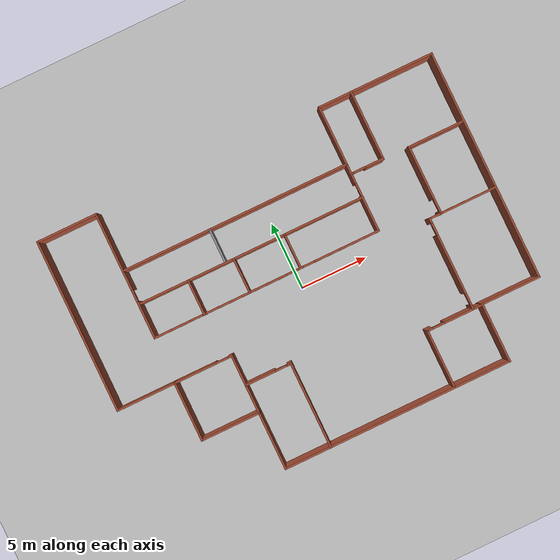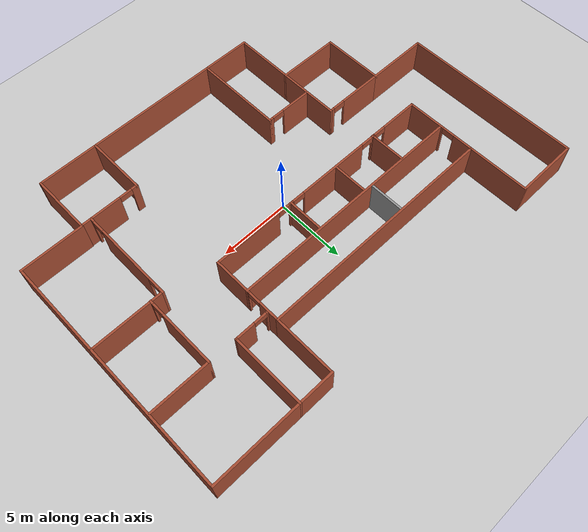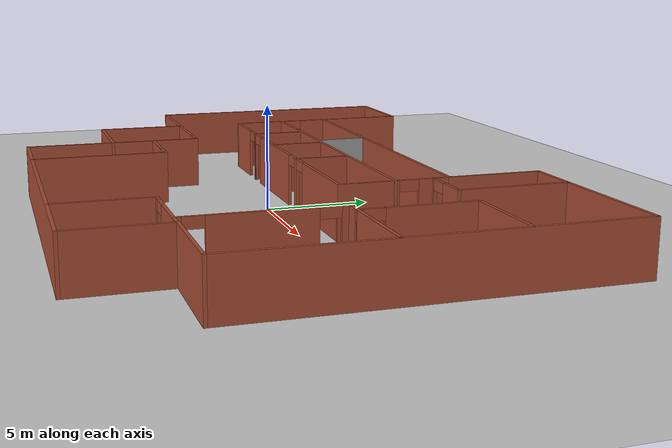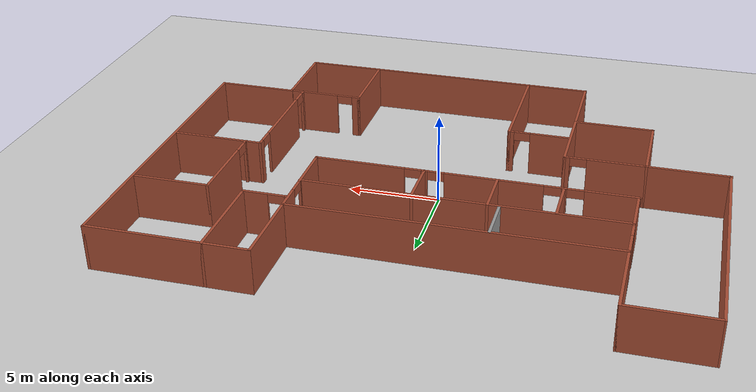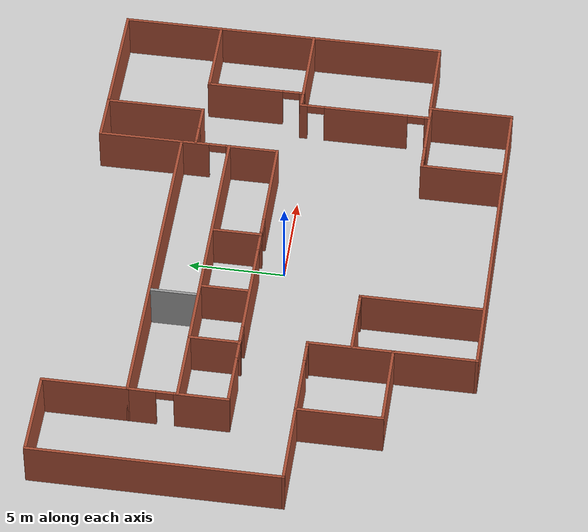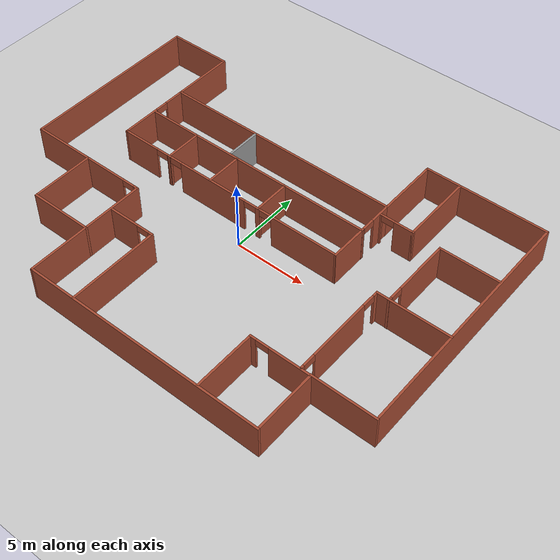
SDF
<sdf version="1.6">
 <world name="default">
  <model name="ground_plane">
   <static>1</static>
   <link name="link">
    <collision name="collision">
     <geometry><plane><normal>0 0 1</normal><size>100 100</size></plane></geometry>
     <surface>
      <contact><collide_bitmask>65535</collide_bitmask></contact>
      <friction><ode><mu>100</mu><mu2>50</mu2></ode></friction>
     </surface>
    </collision>
    <visual name="visual">
     <cast_shadows>0</cast_shadows>
     <geometry><plane><normal>0 0 1</normal><size>100 100</size></plane></geometry>
     <material>
      <script><uri>file://media/materials/scripts/gazebo.material</uri><name>Gazebo/Grey</name></script>
     </material>
    </visual>
   </link>
  </model>
  <model name="mybuilding">
   <pose>-0.044618 0.031992 0 0 -0 0</pose>
   <link name="Wall_0">
    <collision name="Wall_0_Collision">
     <geometry><box><size>4.5 0.15 2.5</size></box></geometry>
     <pose>0 0 1.25 0 -0 0</pose>
    </collision>
    <visual name="Wall_0_Visual">
     <pose>0 0 1.25 0 -0 0</pose>
     <geometry><box><size>4.5 0.15 2.5</size></box></geometry>
     <material>
      <script><uri>file://media/materials/scripts/gazebo.material</uri><name>Gazebo/Bricks</name></script>
      <ambient>1 1 1 1</ambient>
     </material>
     <meta><layer>0</layer></meta>
    </visual>
    <pose>-12.8 10.725 0 0 -0 0</pose>
   </link>
   <link name="Wall_1">
    <collision name="Wall_1_Collision">
     <geometry><box><size>4.5 0.15 2.5</size></box></geometry>
     <pose>0 0 1.25 0 -0 0</pose>
    </collision>
    <visual name="Wall_1_Visual">
     <pose>0 0 1.25 0 -0 0</pose>
     <geometry><box><size>4.5 0.15 2.5</size></box></geometry>
     <material>
      <script><uri>file://media/materials/scripts/gazebo.material</uri><name>Gazebo/Bricks</name></script>
      <ambient>1 1 1 1</ambient>
     </material>
     <meta><layer>0</layer></meta>
    </visual>
    <pose>-10.625 8.55 0 0 0 -1.5708</pose>
   </link>
   <link name="Wall_16">
    <collision name="Wall_16_Collision">
     <geometry><box><size>13 0.15 2.5</size></box></geometry>
     <pose>0 0 1.25 0 -0 0</pose>
    </collision>
    <visual name="Wall_16_Visual">
     <pose>0 0 1.25 0 -0 0</pose>
     <geometry><box><size>13 0.15 2.5</size></box></geometry>
     <material>
      <script><uri>file://media/materials/scripts/gazebo.material</uri><name>Gazebo/Bricks</name></script>
      <ambient>1 1 1 1</ambient>
     </material>
     <meta><layer>0</layer></meta>
    </visual>
    <pose>-15.075 4.3 0 0 -0 1.5708</pose>
   </link>
   <link name="Wall_2">
    <collision name="Wall_2_Collision">
     <geometry><box><size>17.25 0.15 2.5</size></box></geometry>
     <pose>0 0 1.25 0 -0 0</pose>
    </collision>
    <visual name="Wall_2_Visual">
     <pose>0 0 1.25 0 -0 0</pose>
     <geometry><box><size>17.25 0.15 2.5</size></box></geometry>
     <material>
      <script><uri>file://media/materials/scripts/gazebo.material</uri><name>Gazebo/Bricks</name></script>
      <ambient>1 1 1 1</ambient>
     </material>
     <meta><layer>0</layer></meta>
    </visual>
    <pose>-2.075 6.375 0 0 -0 0</pose>
   </link>
   <link name="Wall_20">
    <collision name="Wall_20_Collision">
     <geometry><box><size>4.5 0.15 2.5</size></box></geometry>
     <pose>0 0 1.25 0 -0 0</pose>
    </collision>
    <visual name="Wall_20_Visual">
     <pose>0 0 1.25 0 -0 0</pose>
     <geometry><box><size>4.5 0.15 2.5</size></box></geometry>
     <material>
      <script><uri>file://media/materials/scripts/gazebo.material</uri><name>Gazebo/Bricks</name></script>
      <ambient>1 1 1 1</ambient>
     </material>
     <meta><layer>0</layer></meta>
    </visual>
    <pose>-12.9 -2.125 0 0 -0 0</pose>
   </link>
   <link name="Wall_21">
    <collision name="Wall_21_Collision">
     <geometry><box><size>4.5 0.15 2.5</size></box></geometry>
     <pose>0 0 1.25 0 -0 0</pose>
    </collision>
    <visual name="Wall_21_Visual">
     <pose>0 0 1.25 0 -0 0</pose>
     <geometry><box><size>4.5 0.15 2.5</size></box></geometry>
     <material>
      <script><uri>file://media/materials/scripts/gazebo.material</uri><name>Gazebo/Bricks</name></script>
      <ambient>1 1 1 1</ambient>
     </material>
     <meta><layer>0</layer></meta>
    </visual>
    <pose>-10.725 -4.3 0 0 0 -1.5708</pose>
   </link>
   <link name="Wall_22">
    <collision name="Wall_22_Collision">
     <geometry><box><size>4.5 0.15 2.5</size></box></geometry>
     <pose>0 0 1.25 0 -0 0</pose>
    </collision>
    <visual name="Wall_22_Visual">
     <pose>0 0 1.25 0 -0 0</pose>
     <geometry><box><size>4.5 0.15 2.5</size></box></geometry>
     <material>
      <script><uri>file://media/materials/scripts/gazebo.material</uri><name>Gazebo/Bricks</name></script>
      <ambient>1 1 1 1</ambient>
     </material>
     <meta><layer>0</layer></meta>
    </visual>
    <pose>-8.55 -6.475 0 0 -0 0</pose>
   </link>
   <link name="Wall_24">
    <pose>-10.625 3.825 0 0 0 -1.5708</pose>
    <visual name="Wall_24_Visual_0">
     <pose>-1.86673 0 1.25 0 -0 0</pose>
     <geometry><box><size>1.51653 0.15 2.5</size></box></geometry>
     <material>
      <script><uri>file://media/materials/scripts/gazebo.material</uri><name>Gazebo/Bricks</name></script>
      <ambient>1 1 1 1</ambient>
     </material>
     <meta><layer>0</layer></meta>
    </visual>
    <collision name="Wall_24_Collision_0">
     <geometry><box><size>1.51653 0.15 2.5</size></box></geometry>
     <pose>-1.86673 0 1.25 0 -0 0</pose>
    </collision>
    <visual name="Wall_24_Visual_1">
     <pose>1.20827 0 1.25 0 -0 0</pose>
     <geometry><box><size>2.83347 0.15 2.5</size></box></geometry>
     <material>
      <script><uri>file://media/materials/scripts/gazebo.material</uri><name>Gazebo/Bricks</name></script>
      <ambient>1 1 1 1</ambient>
     </material>
     <meta><layer>0</layer></meta>
    </visual>
    <collision name="Wall_24_Collision_1">
     <geometry><box><size>2.83347 0.15 2.5</size></box></geometry>
     <pose>1.20827 0 1.25 0 -0 0</pose>
    </collision>
    <visual name="Wall_24_Visual_2">
     <pose>-0.658467 0 2.25 0 -0 0</pose>
     <geometry><box><size>0.9 0.15 0.5</size></box></geometry>
     <material>
      <script><uri>file://media/materials/scripts/gazebo.material</uri><name>Gazebo/Bricks</name></script>
      <ambient>1 1 1 1</ambient>
     </material>
     <meta><layer>0</layer></meta>
    </visual>
    <collision name="Wall_24_Collision_2">
     <geometry><box><size>0.9 0.15 0.5</size></box></geometry>
     <pose>-0.658467 0 2.25 0 -0 0</pose>
    </collision>
   </link>
   <link name="Wall_25">
    <pose>-2.075 1.275 0 0 -0 0</pose>
    <visual name="Wall_25_Visual_0">
     <pose>-7.22106 0 1.25 0 -0 0</pose>
     <geometry><box><size>2.80789 0.15 2.5</size></box></geometry>
     <material>
      <script><uri>file://media/materials/scripts/gazebo.material</uri><name>Gazebo/Bricks</name></script>
      <ambient>1 1 1 1</ambient>
     </material>
     <meta><layer>0</layer></meta>
    </visual>
    <collision name="Wall_25_Collision_0">
     <geometry><box><size>2.80789 0.15 2.5</size></box></geometry>
     <pose>-7.22106 0 1.25 0 -0 0</pose>
    </collision>
    <visual name="Wall_25_Visual_1">
     <pose>-4.77525 0 1.25 0 -0 0</pose>
     <geometry><box><size>0.283739 0.15 2.5</size></box></geometry>
     <material>
      <script><uri>file://media/materials/scripts/gazebo.material</uri><name>Gazebo/Bricks</name></script>
      <ambient>1 1 1 1</ambient>
     </material>
     <meta><layer>0</layer></meta>
    </visual>
    <collision name="Wall_25_Collision_1">
     <geometry><box><size>0.283739 0.15 2.5</size></box></geometry>
     <pose>-4.77525 0 1.25 0 -0 0</pose>
    </collision>
    <visual name="Wall_25_Visual_2">
     <pose>-1.10296 0 1.25 0 -0 0</pose>
     <geometry><box><size>5.26082 0.15 2.5</size></box></geometry>
     <material>
      <script><uri>file://media/materials/scripts/gazebo.material</uri><name>Gazebo/Bricks</name></script>
      <ambient>1 1 1 1</ambient>
     </material>
     <meta><layer>0</layer></meta>
    </visual>
    <collision name="Wall_25_Collision_2">
     <geometry><box><size>5.26082 0.15 2.5</size></box></geometry>
     <pose>-1.10296 0 1.25 0 -0 0</pose>
    </collision>
    <visual name="Wall_25_Visual_3">
     <pose>2.59622 0 1.25 0 -0 0</pose>
     <geometry><box><size>0.337545 0.15 2.5</size></box></geometry>
     <material>
      <script><uri>file://media/materials/scripts/gazebo.material</uri><name>Gazebo/Bricks</name></script>
      <ambient>1 1 1 1</ambient>
     </material>
     <meta><layer>0</layer></meta>
    </visual>
    <collision name="Wall_25_Collision_3">
     <geometry><box><size>0.337545 0.15 2.5</size></box></geometry>
     <pose>2.59622 0 1.25 0 -0 0</pose>
    </collision>
    <visual name="Wall_25_Visual_4">
     <pose>6.145 0 1.25 0 -0 0</pose>
     <geometry><box><size>4.96001 0.15 2.5</size></box></geometry>
     <material>
      <script><uri>file://media/materials/scripts/gazebo.material</uri><name>Gazebo/Bricks</name></script>
      <ambient>1 1 1 1</ambient>
     </material>
     <meta><layer>0</layer></meta>
    </visual>
    <collision name="Wall_25_Collision_4">
     <geometry><box><size>4.96001 0.15 2.5</size></box></geometry>
     <pose>6.145 0 1.25 0 -0 0</pose>
    </collision>
    <visual name="Wall_25_Visual_5">
     <pose>-5.36712 0 2.25 0 -0 0</pose>
     <geometry><box><size>0.9 0.15 0.5</size></box></geometry>
     <material>
      <script><uri>file://media/materials/scripts/gazebo.material</uri><name>Gazebo/Bricks</name></script>
      <ambient>1 1 1 1</ambient>
     </material>
     <meta><layer>0</layer></meta>
    </visual>
    <collision name="Wall_25_Collision_5">
     <geometry><box><size>0.9 0.15 0.5</size></box></geometry>
     <pose>-5.36712 0 2.25 0 -0 0</pose>
    </collision>
    <visual name="Wall_25_Visual_6">
     <pose>-4.18338 0 2.25 0 -0 0</pose>
     <geometry><box><size>0.9 0.15 0.5</size></box></geometry>
     <material>
      <script><uri>file://media/materials/scripts/gazebo.material</uri><name>Gazebo/Bricks</name></script>
      <ambient>1 1 1 1</ambient>
     </material>
     <meta><layer>0</layer></meta>
    </visual>
    <collision name="Wall_25_Collision_6">
     <geometry><box><size>0.9 0.15 0.5</size></box></geometry>
     <pose>-4.18338 0 2.25 0 -0 0</pose>
    </collision>
    <visual name="Wall_25_Visual_7">
     <pose>1.97745 0 2.25 0 -0 0</pose>
     <geometry><box><size>0.9 0.15 0.5</size></box></geometry>
     <material>
      <script><uri>file://media/materials/scripts/gazebo.material</uri><name>Gazebo/Bricks</name></script>
      <ambient>1 1 1 1</ambient>
     </material>
     <meta><layer>0</layer></meta>
    </visual>
    <collision name="Wall_25_Collision_7">
     <geometry><box><size>0.9 0.15 0.5</size></box></geometry>
     <pose>1.97745 0 2.25 0 -0 0</pose>
    </collision>
    <visual name="Wall_25_Visual_8">
     <pose>3.21499 0 2.25 0 -0 0</pose>
     <geometry><box><size>0.9 0.15 0.5</size></box></geometry>
     <material>
      <script><uri>file://media/materials/scripts/gazebo.material</uri><name>Gazebo/Bricks</name></script>
      <ambient>1 1 1 1</ambient>
     </material>
     <meta><layer>0</layer></meta>
    </visual>
    <collision name="Wall_25_Collision_8">
     <geometry><box><size>0.9 0.15 0.5</size></box></geometry>
     <pose>3.21499 0 2.25 0 -0 0</pose>
    </collision>
   </link>
   <link name="Wall_26">
    <pose>6.475 3.825 0 0 -0 1.5708</pose>
    <visual name="Wall_26_Visual_0">
     <pose>-1.22172 0 1.25 0 -0 0</pose>
     <geometry><box><size>2.80656 0.15 2.5</size></box></geometry>
     <material>
      <script><uri>file://media/materials/scripts/gazebo.material</uri><name>Gazebo/Bricks</name></script>
      <ambient>1 1 1 1</ambient>
     </material>
     <meta><layer>0</layer></meta>
    </visual>
    <collision name="Wall_26_Collision_0">
     <geometry><box><size>2.80656 0.15 2.5</size></box></geometry>
     <pose>-1.22172 0 1.25 0 -0 0</pose>
    </collision>
    <visual name="Wall_26_Visual_1">
     <pose>1.85328 0 1.25 0 -0 0</pose>
     <geometry><box><size>1.54344 0.15 2.5</size></box></geometry>
     <material>
      <script><uri>file://media/materials/scripts/gazebo.material</uri><name>Gazebo/Bricks</name></script>
      <ambient>1 1 1 1</ambient>
     </material>
     <meta><layer>0</layer></meta>
    </visual>
    <collision name="Wall_26_Collision_1">
     <geometry><box><size>1.54344 0.15 2.5</size></box></geometry>
     <pose>1.85328 0 1.25 0 -0 0</pose>
    </collision>
    <visual name="Wall_26_Visual_2">
     <pose>0.631564 0 2.25 0 -0 0</pose>
     <geometry><box><size>0.9 0.15 0.5</size></box></geometry>
     <material>
      <script><uri>file://media/materials/scripts/gazebo.material</uri><name>Gazebo/Bricks</name></script>
      <ambient>1 1 1 1</ambient>
     </material>
     <meta><layer>0</layer></meta>
    </visual>
    <collision name="Wall_26_Collision_2">
     <geometry><box><size>0.9 0.15 0.5</size></box></geometry>
     <pose>0.631564 0 2.25 0 -0 0</pose>
    </collision>
   </link>
   <link name="Wall_28">
    <collision name="Wall_28_Collision">
     <geometry><box><size>17.25 0.15 2.5</size></box></geometry>
     <pose>0 0 1.25 0 -0 0</pose>
    </collision>
    <visual name="Wall_28_Visual">
     <pose>0 0 1.25 0 -0 0</pose>
     <geometry><box><size>17.25 0.15 2.5</size></box></geometry>
     <material>
      <script><uri>file://media/materials/scripts/gazebo.material</uri><name>Gazebo/Bricks</name></script>
      <ambient>1 1 1 1</ambient>
     </material>
     <meta><layer>0</layer></meta>
    </visual>
    <pose>-2.06669 3.83779 0 0 -0 0</pose>
   </link>
   <link name="Wall_3">
    <collision name="Wall_3_Collision">
     <geometry><box><size>4.5 0.15 2.5</size></box></geometry>
     <pose>0 0 1.25 0 -0 0</pose>
    </collision>
    <visual name="Wall_3_Visual">
     <pose>0 0 1.25 0 -0 0</pose>
     <geometry><box><size>4.5 0.15 2.5</size></box></geometry>
     <material>
      <script><uri>file://media/materials/scripts/gazebo.material</uri><name>Gazebo/Bricks</name></script>
      <ambient>1 1 1 1</ambient>
     </material>
     <meta><layer>0</layer></meta>
    </visual>
    <pose>6.475 8.55 0 0 -0 1.5708</pose>
   </link>
   <link name="Wall_30">
    <collision name="Wall_30_Collision">
     <geometry><box><size>2.5 0.15 2.5</size></box></geometry>
     <pose>0 0 1.25 0 -0 0</pose>
    </collision>
    <visual name="Wall_30_Visual">
     <pose>0 0 1.25 0 -0 0</pose>
     <geometry><box><size>2.5 0.15 2.5</size></box></geometry>
     <material>
      <script><uri>file://media/materials/scripts/gazebo.material</uri><name>Gazebo/Grey</name></script>
      <ambient>1 1 1 1</ambient>
     </material>
     <meta><layer>0</layer></meta>
    </visual>
    <pose>-3.99851 5.16479 0 0 0 -1.5708</pose>
   </link>
   <link name="Wall_33">
    <collision name="Wall_33_Collision">
     <geometry><box><size>2.7 0.15 2.5</size></box></geometry>
     <pose>0 0 1.25 0 -0 0</pose>
    </collision>
    <visual name="Wall_33_Visual">
     <pose>0 0 1.25 0 -0 0</pose>
     <geometry><box><size>2.7 0.15 2.5</size></box></geometry>
     <material>
      <script><uri>file://media/materials/scripts/gazebo.material</uri><name>Gazebo/Bricks</name></script>
      <ambient>1 1 1 1</ambient>
     </material>
     <meta><layer>0</layer></meta>
    </visual>
    <pose>-6.85025 2.53589 0 0 0 -1.5708</pose>
   </link>
   <link name="Wall_35">
    <collision name="Wall_35_Collision">
     <geometry><box><size>2.7 0.15 2.5</size></box></geometry>
     <pose>0 0 1.25 0 -0 0</pose>
    </collision>
    <visual name="Wall_35_Visual">
     <pose>0 0 1.25 0 -0 0</pose>
     <geometry><box><size>2.7 0.15 2.5</size></box></geometry>
     <material>
      <script><uri>file://media/materials/scripts/gazebo.material</uri><name>Gazebo/Bricks</name></script>
      <ambient>1 1 1 1</ambient>
     </material>
     <meta><layer>0</layer></meta>
    </visual>
    <pose>-3.37974 2.56279 0 0 0 -1.5708</pose>
   </link>
   <link name="Wall_37">
    <collision name="Wall_37_Collision">
     <geometry><box><size>2.7 0.15 2.5</size></box></geometry>
     <pose>0 0 1.25 0 -0 0</pose>
    </collision>
    <visual name="Wall_37_Visual">
     <pose>0 0 1.25 0 -0 0</pose>
     <geometry><box><size>2.7 0.15 2.5</size></box></geometry>
     <material>
      <script><uri>file://media/materials/scripts/gazebo.material</uri><name>Gazebo/Bricks</name></script>
      <ambient>1 1 1 1</ambient>
     </material>
     <meta><layer>0</layer></meta>
    </visual>
    <pose>0.52122 2.56279 0 0 0 -1.5708</pose>
   </link>
   <link name="Wall_39">
    <collision name="Wall_39_Collision">
     <geometry><box><size>5.25 0.15 2.5</size></box></geometry>
     <pose>0 0 1.25 0 -0 0</pose>
    </collision>
    <visual name="Wall_39_Visual">
     <pose>0 0 1.25 0 -0 0</pose>
     <geometry><box><size>5.25 0.15 2.5</size></box></geometry>
     <material>
      <script><uri>file://media/materials/scripts/gazebo.material</uri><name>Gazebo/Bricks</name></script>
      <ambient>1 1 1 1</ambient>
     </material>
     <meta><layer>0</layer></meta>
    </visual>
    <pose>8.91501 8.175 0 0 0 -1.5708</pose>
   </link>
   <link name="Wall_4">
    <collision name="Wall_4_Collision">
     <geometry><box><size>8.75 0.15 2.5</size></box></geometry>
     <pose>0 0 1.25 0 -0 0</pose>
    </collision>
    <visual name="Wall_4_Visual">
     <pose>0 0 1.25 0 -0 0</pose>
     <geometry><box><size>8.75 0.15 2.5</size></box></geometry>
     <material>
      <script><uri>file://media/materials/scripts/gazebo.material</uri><name>Gazebo/Bricks</name></script>
      <ambient>1 1 1 1</ambient>
     </material>
     <meta><layer>0</layer></meta>
    </visual>
    <pose>10.775 10.725 0 0 -0 0</pose>
   </link>
   <link name="Wall_40">
    <pose>7.74001 5.625 0 0 -0 3.14159</pose>
    <visual name="Wall_40_Visual_0">
     <pose>-0.536244 0 1.25 0 -0 0</pose>
     <geometry><box><size>1.42751 0.15 2.5</size></box></geometry>
     <material>
      <script><uri>file://media/materials/scripts/gazebo.material</uri><name>Gazebo/Bricks</name></script>
      <ambient>1 1 1 1</ambient>
     </material>
     <meta><layer>0</layer></meta>
    </visual>
    <collision name="Wall_40_Collision_0">
     <geometry><box><size>1.42751 0.15 2.5</size></box></geometry>
     <pose>-0.536244 0 1.25 0 -0 0</pose>
    </collision>
    <visual name="Wall_40_Visual_1">
     <pose>1.16376 0 1.25 0 -0 0</pose>
     <geometry><box><size>0.172488 0.15 2.5</size></box></geometry>
     <material>
      <script><uri>file://media/materials/scripts/gazebo.material</uri><name>Gazebo/Bricks</name></script>
      <ambient>1 1 1 1</ambient>
     </material>
     <meta><layer>0</layer></meta>
    </visual>
    <collision name="Wall_40_Collision_1">
     <geometry><box><size>0.172488 0.15 2.5</size></box></geometry>
     <pose>1.16376 0 1.25 0 -0 0</pose>
    </collision>
    <visual name="Wall_40_Visual_2">
     <pose>0.627512 0 2.25 0 -0 0</pose>
     <geometry><box><size>0.9 0.15 0.5</size></box></geometry>
     <material>
      <script><uri>file://media/materials/scripts/gazebo.material</uri><name>Gazebo/Bricks</name></script>
      <ambient>1 1 1 1</ambient>
     </material>
     <meta><layer>0</layer></meta>
    </visual>
    <collision name="Wall_40_Collision_2">
     <geometry><box><size>0.9 0.15 0.5</size></box></geometry>
     <pose>0.627512 0 2.25 0 -0 0</pose>
    </collision>
   </link>
   <link name="Wall_42">
    <pose>-8.55 -2.125 0 0 -0 0</pose>
    <visual name="Wall_42_Visual_0">
     <pose>-0.634639 0 1.25 0 -0 0</pose>
     <geometry><box><size>3.23072 0.15 2.5</size></box></geometry>
     <material>
      <script><uri>file://media/materials/scripts/gazebo.material</uri><name>Gazebo/Bricks</name></script>
      <ambient>1 1 1 1</ambient>
     </material>
     <meta><layer>0</layer></meta>
    </visual>
    <collision name="Wall_42_Collision_0">
     <geometry><box><size>3.23072 0.15 2.5</size></box></geometry>
     <pose>-0.634639 0 1.25 0 -0 0</pose>
    </collision>
    <visual name="Wall_42_Visual_1">
     <pose>2.06536 0 1.25 0 -0 0</pose>
     <geometry><box><size>0.369277 0.15 2.5</size></box></geometry>
     <material>
      <script><uri>file://media/materials/scripts/gazebo.material</uri><name>Gazebo/Bricks</name></script>
      <ambient>1 1 1 1</ambient>
     </material>
     <meta><layer>0</layer></meta>
    </visual>
    <collision name="Wall_42_Collision_1">
     <geometry><box><size>0.369277 0.15 2.5</size></box></geometry>
     <pose>2.06536 0 1.25 0 -0 0</pose>
    </collision>
    <visual name="Wall_42_Visual_2">
     <pose>1.43072 0 2.25 0 -0 0</pose>
     <geometry><box><size>0.9 0.15 0.5</size></box></geometry>
     <material>
      <script><uri>file://media/materials/scripts/gazebo.material</uri><name>Gazebo/Bricks</name></script>
      <ambient>1 1 1 1</ambient>
     </material>
     <meta><layer>0</layer></meta>
    </visual>
    <collision name="Wall_42_Collision_2">
     <geometry><box><size>0.9 0.15 0.5</size></box></geometry>
     <pose>1.43072 0 2.25 0 -0 0</pose>
    </collision>
   </link>
   <link name="Wall_43">
    <collision name="Wall_43_Collision">
     <geometry><box><size>4.5 0.15 2.5</size></box></geometry>
     <pose>0 0 1.25 0 -0 0</pose>
    </collision>
    <visual name="Wall_43_Visual">
     <pose>0 0 1.25 0 -0 0</pose>
     <geometry><box><size>4.5 0.15 2.5</size></box></geometry>
     <material>
      <script><uri>file://media/materials/scripts/gazebo.material</uri><name>Gazebo/Bricks</name></script>
      <ambient>1 1 1 1</ambient>
     </material>
     <meta><layer>0</layer></meta>
    </visual>
    <pose>-6.375 -4.3 0 0 0 -1.5708</pose>
   </link>
   <link name="Wall_45">
    <pose>-4.61028 -4.36767 0 0 -0 0</pose>
    <visual name="Wall_45_Visual_0">
     <pose>-0.632697 0 1.25 0 -0 0</pose>
     <geometry><box><size>2.23461 0.15 2.5</size></box></geometry>
     <material>
      <script><uri>file://media/materials/scripts/gazebo.material</uri><name>Gazebo/Bricks</name></script>
      <ambient>1 1 1 1</ambient>
     </material>
     <meta><layer>0</layer></meta>
    </visual>
    <collision name="Wall_45_Collision_0">
     <geometry><box><size>2.23461 0.15 2.5</size></box></geometry>
     <pose>-0.632697 0 1.25 0 -0 0</pose>
    </collision>
    <visual name="Wall_45_Visual_1">
     <pose>1.5673 0 1.25 0 -0 0</pose>
     <geometry><box><size>0.365393 0.15 2.5</size></box></geometry>
     <material>
      <script><uri>file://media/materials/scripts/gazebo.material</uri><name>Gazebo/Bricks</name></script>
      <ambient>1 1 1 1</ambient>
     </material>
     <meta><layer>0</layer></meta>
    </visual>
    <collision name="Wall_45_Collision_1">
     <geometry><box><size>0.365393 0.15 2.5</size></box></geometry>
     <pose>1.5673 0 1.25 0 -0 0</pose>
    </collision>
    <visual name="Wall_45_Visual_2">
     <pose>0.934607 0 2.25 0 -0 0</pose>
     <geometry><box><size>0.9 0.15 0.5</size></box></geometry>
     <material>
      <script><uri>file://media/materials/scripts/gazebo.material</uri><name>Gazebo/Bricks</name></script>
      <ambient>1 1 1 1</ambient>
     </material>
     <meta><layer>0</layer></meta>
    </visual>
    <collision name="Wall_45_Collision_2">
     <geometry><box><size>0.9 0.15 0.5</size></box></geometry>
     <pose>0.934607 0 2.25 0 -0 0</pose>
    </collision>
   </link>
   <link name="Wall_46">
    <collision name="Wall_46_Collision">
     <geometry><box><size>6.5 0.15 2.5</size></box></geometry>
     <pose>0 0 1.25 0 -0 0</pose>
    </collision>
    <visual name="Wall_46_Visual">
     <pose>0 0 1.25 0 -0 0</pose>
     <geometry><box><size>6.5 0.15 2.5</size></box></geometry>
     <material>
      <script><uri>file://media/materials/scripts/gazebo.material</uri><name>Gazebo/Bricks</name></script>
      <ambient>1 1 1 1</ambient>
     </material>
     <meta><layer>0</layer></meta>
    </visual>
    <pose>-2.93528 -7.54267 0 0 0 -1.5708</pose>
   </link>
   <link name="Wall_48">
    <collision name="Wall_48_Collision">
     <geometry><box><size>4.4 0.15 2.5</size></box></geometry>
     <pose>0 0 1.25 0 -0 0</pose>
    </collision>
    <visual name="Wall_48_Visual">
     <pose>0 0 1.25 0 -0 0</pose>
     <geometry><box><size>4.4 0.15 2.5</size></box></geometry>
     <material>
      <script><uri>file://media/materials/scripts/gazebo.material</uri><name>Gazebo/Bricks</name></script>
      <ambient>1 1 1 1</ambient>
     </material>
     <meta><layer>0</layer></meta>
    </visual>
    <pose>6.52062 -8.53801 0 0 -0 1.5708</pose>
   </link>
   <link name="Wall_5">
    <collision name="Wall_5_Collision">
     <geometry><box><size>17.25 0.15 2.5</size></box></geometry>
     <pose>0 0 1.25 0 -0 0</pose>
    </collision>
    <visual name="Wall_5_Visual">
     <pose>0 0 1.25 0 -0 0</pose>
     <geometry><box><size>17.25 0.15 2.5</size></box></geometry>
     <material>
      <script><uri>file://media/materials/scripts/gazebo.material</uri><name>Gazebo/Bricks</name></script>
      <ambient>1 1 1 1</ambient>
     </material>
     <meta><layer>0</layer></meta>
    </visual>
    <pose>15.075 2.175 0 0 0 -1.5708</pose>
   </link>
   <link name="Wall_53">
    <pose>8.57062 -6.41301 0 0 -0 0</pose>
    <visual name="Wall_53_Visual_0">
     <pose>-1.88205 0 1.25 0 -0 0</pose>
     <geometry><box><size>0.485901 0.15 2.5</size></box></geometry>
     <material>
      <script><uri>file://media/materials/scripts/gazebo.material</uri><name>Gazebo/Bricks</name></script>
      <ambient>1 1 1 1</ambient>
     </material>
     <meta><layer>0</layer></meta>
    </visual>
    <collision name="Wall_53_Collision_0">
     <geometry><box><size>0.485901 0.15 2.5</size></box></geometry>
     <pose>-1.88205 0 1.25 0 -0 0</pose>
    </collision>
    <visual name="Wall_53_Visual_1">
     <pose>0.692951 0 1.25 0 -0 0</pose>
     <geometry><box><size>2.8641 0.15 2.5</size></box></geometry>
     <material>
      <script><uri>file://media/materials/scripts/gazebo.material</uri><name>Gazebo/Bricks</name></script>
      <ambient>1 1 1 1</ambient>
     </material>
     <meta><layer>0</layer></meta>
    </visual>
    <collision name="Wall_53_Collision_1">
     <geometry><box><size>2.8641 0.15 2.5</size></box></geometry>
     <pose>0.692951 0 1.25 0 -0 0</pose>
    </collision>
    <visual name="Wall_53_Visual_2">
     <pose>-1.1891 0 2.25 0 -0 0</pose>
     <geometry><box><size>0.9 0.15 0.5</size></box></geometry>
     <material>
      <script><uri>file://media/materials/scripts/gazebo.material</uri><name>Gazebo/Bricks</name></script>
      <ambient>1 1 1 1</ambient>
     </material>
     <meta><layer>0</layer></meta>
    </visual>
    <collision name="Wall_53_Collision_2">
     <geometry><box><size>0.9 0.15 0.5</size></box></geometry>
     <pose>-1.1891 0 2.25 0 -0 0</pose>
    </collision>
   </link>
   <link name="Wall_55">
    <pose>10.018 -2.93351 0 0 -0 1.5708</pose>
    <visual name="Wall_55_Visual_0">
     <pose>-3.35121 0 1.25 0 -0 0</pose>
     <geometry><box><size>0.297579 0.15 2.5</size></box></geometry>
     <material>
      <script><uri>file://media/materials/scripts/gazebo.material</uri><name>Gazebo/Bricks</name></script>
      <ambient>1 1 1 1</ambient>
     </material>
     <meta><layer>0</layer></meta>
    </visual>
    <collision name="Wall_55_Collision_0">
     <geometry><box><size>0.297579 0.15 2.5</size></box></geometry>
     <pose>-3.35121 0 1.25 0 -0 0</pose>
    </collision>
    <visual name="Wall_55_Visual_1">
     <pose>-0.062105 0 1.25 0 -0 0</pose>
     <geometry><box><size>4.48063 0.15 2.5</size></box></geometry>
     <material>
      <script><uri>file://media/materials/scripts/gazebo.material</uri><name>Gazebo/Bricks</name></script>
      <ambient>1 1 1 1</ambient>
     </material>
     <meta><layer>0</layer></meta>
    </visual>
    <collision name="Wall_55_Collision_1">
     <geometry><box><size>4.48063 0.15 2.5</size></box></geometry>
     <pose>-0.062105 0 1.25 0 -0 0</pose>
    </collision>
    <visual name="Wall_55_Visual_2">
     <pose>3.28911 0 1.25 0 -0 0</pose>
     <geometry><box><size>0.421789 0.15 2.5</size></box></geometry>
     <material>
      <script><uri>file://media/materials/scripts/gazebo.material</uri><name>Gazebo/Bricks</name></script>
      <ambient>1 1 1 1</ambient>
     </material>
     <meta><layer>0</layer></meta>
    </visual>
    <collision name="Wall_55_Collision_2">
     <geometry><box><size>0.421789 0.15 2.5</size></box></geometry>
     <pose>3.28911 0 1.25 0 -0 0</pose>
    </collision>
    <visual name="Wall_55_Visual_3">
     <pose>-2.75242 0 2.25 0 -0 0</pose>
     <geometry><box><size>0.9 0.15 0.5</size></box></geometry>
     <material>
      <script><uri>file://media/materials/scripts/gazebo.material</uri><name>Gazebo/Bricks</name></script>
      <ambient>1 1 1 1</ambient>
     </material>
     <meta><layer>0</layer></meta>
    </visual>
    <collision name="Wall_55_Collision_3">
     <geometry><box><size>0.9 0.15 0.5</size></box></geometry>
     <pose>-2.75242 0 2.25 0 -0 0</pose>
    </collision>
    <visual name="Wall_55_Visual_4">
     <pose>2.62821 0 2.25 0 -0 0</pose>
     <geometry><box><size>0.9 0.15 0.5</size></box></geometry>
     <material>
      <script><uri>file://media/materials/scripts/gazebo.material</uri><name>Gazebo/Bricks</name></script>
      <ambient>1 1 1 1</ambient>
     </material>
     <meta><layer>0</layer></meta>
    </visual>
    <collision name="Wall_55_Collision_4">
     <geometry><box><size>0.9 0.15 0.5</size></box></geometry>
     <pose>2.62821 0 2.25 0 -0 0</pose>
    </collision>
   </link>
   <link name="Wall_56">
    <collision name="Wall_56_Collision">
     <geometry><box><size>5.2 0.15 2.5</size></box></geometry>
     <pose>0 0 1.25 0 -0 0</pose>
    </collision>
    <visual name="Wall_56_Visual">
     <pose>0 0 1.25 0 -0 0</pose>
     <geometry><box><size>5.2 0.15 2.5</size></box></geometry>
     <material>
      <script><uri>file://media/materials/scripts/gazebo.material</uri><name>Gazebo/Bricks</name></script>
      <ambient>1 1 1 1</ambient>
     </material>
     <meta><layer>0</layer></meta>
    </visual>
    <pose>12.543 0.491493 0 0 -0 0</pose>
   </link>
   <link name="Wall_58">
    <pose>10.8789 3.0249 0 0 -0 1.5708</pose>
    <visual name="Wall_58_Visual_0">
     <pose>-2.47621 0 1.25 0 -0 0</pose>
     <geometry><box><size>0.297579 0.15 2.5</size></box></geometry>
     <material>
      <script><uri>file://media/materials/scripts/gazebo.material</uri><name>Gazebo/Bricks</name></script>
      <ambient>1 1 1 1</ambient>
     </material>
     <meta><layer>0</layer></meta>
    </visual>
    <collision name="Wall_58_Collision_0">
     <geometry><box><size>0.297579 0.15 2.5</size></box></geometry>
     <pose>-2.47621 0 1.25 0 -0 0</pose>
    </collision>
    <visual name="Wall_58_Visual_1">
     <pose>0.598789 0 1.25 0 -0 0</pose>
     <geometry><box><size>4.05242 0.15 2.5</size></box></geometry>
     <material>
      <script><uri>file://media/materials/scripts/gazebo.material</uri><name>Gazebo/Bricks</name></script>
      <ambient>1 1 1 1</ambient>
     </material>
     <meta><layer>0</layer></meta>
    </visual>
    <collision name="Wall_58_Collision_1">
     <geometry><box><size>4.05242 0.15 2.5</size></box></geometry>
     <pose>0.598789 0 1.25 0 -0 0</pose>
    </collision>
    <visual name="Wall_58_Visual_2">
     <pose>-1.87742 0 2.25 0 -0 0</pose>
     <geometry><box><size>0.9 0.15 0.5</size></box></geometry>
     <material>
      <script><uri>file://media/materials/scripts/gazebo.material</uri><name>Gazebo/Bricks</name></script>
      <ambient>1 1 1 1</ambient>
     </material>
     <meta><layer>0</layer></meta>
    </visual>
    <collision name="Wall_58_Collision_2">
     <geometry><box><size>0.9 0.15 0.5</size></box></geometry>
     <pose>-1.87742 0 2.25 0 -0 0</pose>
    </collision>
   </link>
   <link name="Wall_59">
    <collision name="Wall_59_Collision">
     <geometry><box><size>4.25 0.15 2.5</size></box></geometry>
     <pose>0 0 1.25 0 -0 0</pose>
    </collision>
    <visual name="Wall_59_Visual">
     <pose>0 0 1.25 0 -0 0</pose>
     <geometry><box><size>4.25 0.15 2.5</size></box></geometry>
     <material>
      <script><uri>file://media/materials/scripts/gazebo.material</uri><name>Gazebo/Bricks</name></script>
      <ambient>1 1 1 1</ambient>
     </material>
     <meta><layer>0</layer></meta>
    </visual>
    <pose>12.9289 5.5749 0 0 -0 0</pose>
   </link>
   <link name="Wall_6">
    <collision name="Wall_6_Collision">
     <geometry><box><size>4.5 0.15 2.5</size></box></geometry>
     <pose>0 0 1.25 0 -0 0</pose>
    </collision>
    <visual name="Wall_6_Visual">
     <pose>0 0 1.25 0 -0 0</pose>
     <geometry><box><size>4.5 0.15 2.5</size></box></geometry>
     <material>
      <script><uri>file://media/materials/scripts/gazebo.material</uri><name>Gazebo/Bricks</name></script>
      <ambient>1 1 1 1</ambient>
     </material>
     <meta><layer>0</layer></meta>
    </visual>
    <pose>12.9 -6.375 0 0 -0 3.14159</pose>
   </link>
   <link name="Wall_7">
    <collision name="Wall_7_Collision">
     <geometry><box><size>4.5 0.15 2.5</size></box></geometry>
     <pose>0 0 1.25 0 -0 0</pose>
    </collision>
    <visual name="Wall_7_Visual">
     <pose>0 0 1.25 0 -0 0</pose>
     <geometry><box><size>4.5 0.15 2.5</size></box></geometry>
     <material>
      <script><uri>file://media/materials/scripts/gazebo.material</uri><name>Gazebo/Bricks</name></script>
      <ambient>1 1 1 1</ambient>
     </material>
     <meta><layer>0</layer></meta>
    </visual>
    <pose>10.725 -8.55 0 0 0 -1.5708</pose>
   </link>
   <link name="Wall_8">
    <collision name="Wall_8_Collision">
     <geometry><box><size>17.25 0.15 2.5</size></box></geometry>
     <pose>0 0 1.25 0 -0 0</pose>
    </collision>
    <visual name="Wall_8_Visual">
     <pose>0 0 1.25 0 -0 0</pose>
     <geometry><box><size>17.25 0.15 2.5</size></box></geometry>
     <material>
      <script><uri>file://media/materials/scripts/gazebo.material</uri><name>Gazebo/Bricks</name></script>
      <ambient>1 1 1 1</ambient>
     </material>
     <meta><layer>0</layer></meta>
    </visual>
    <pose>2.175 -10.725 0 0 -0 3.14159</pose>
   </link>
   <link name="Wall_9">
    <collision name="Wall_9_Collision">
     <geometry><box><size>4.4 0.15 2.5</size></box></geometry>
     <pose>0 0 1.25 0 -0 0</pose>
    </collision>
    <visual name="Wall_9_Visual">
     <pose>0 0 1.25 0 -0 0</pose>
     <geometry><box><size>4.4 0.15 2.5</size></box></geometry>
     <material>
      <script><uri>file://media/materials/scripts/gazebo.material</uri><name>Gazebo/Bricks</name></script>
      <ambient>1 1 1 1</ambient>
     </material>
     <meta><layer>0</layer></meta>
    </visual>
    <pose>-6.375 -8.6 0 0 -0 1.5708</pose>
   </link>
   <static>1</static>
  </model>
 </world>
</sdf>
